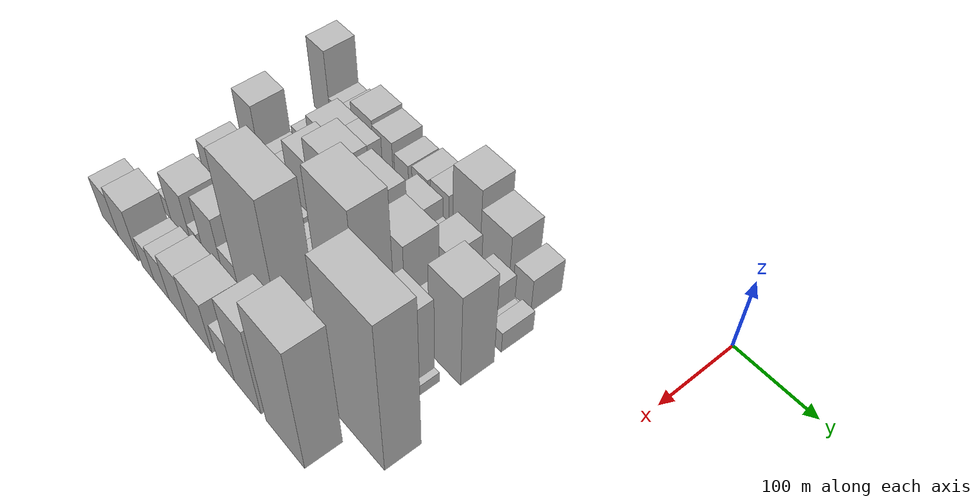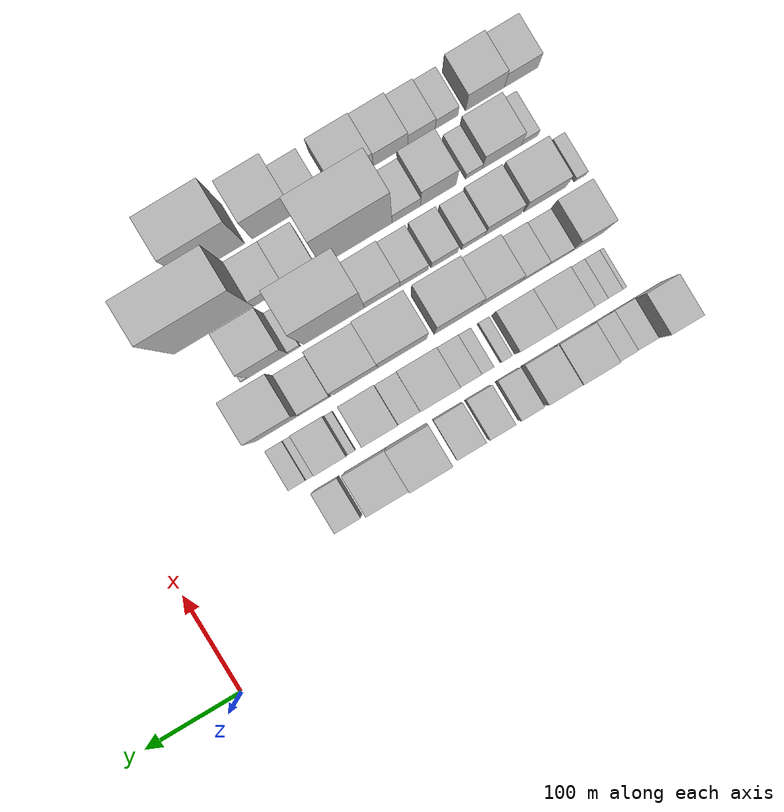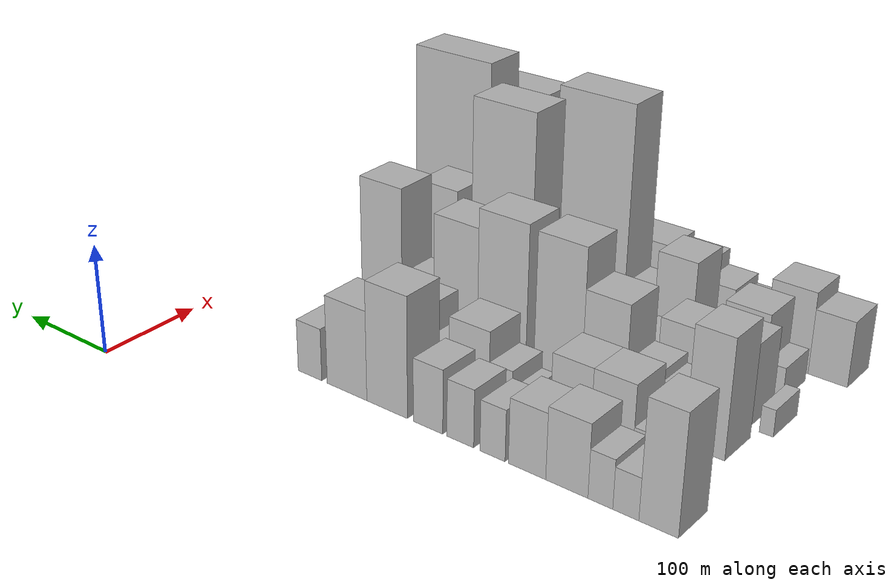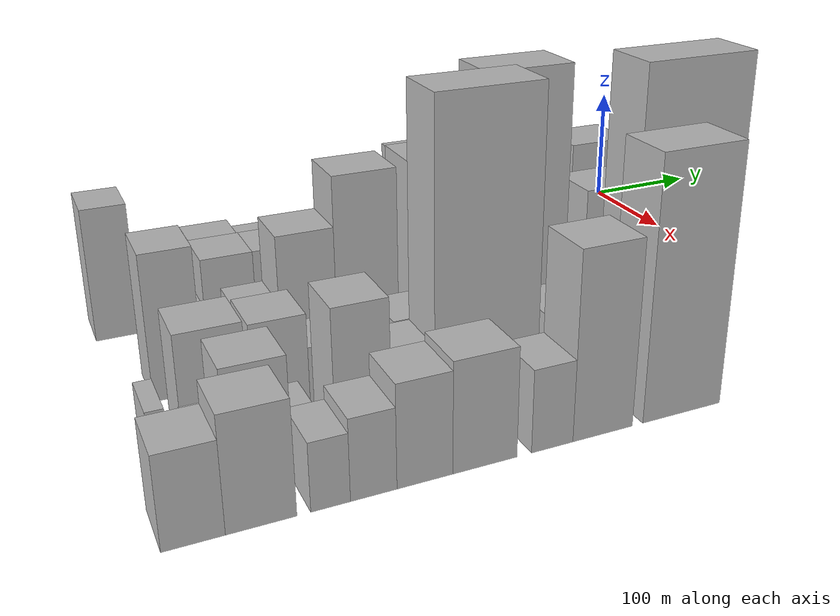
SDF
<sdf version="1.6">
 <world name="default">
  <model name="building_12">
   <static>1</static>
   <pose>100.0000 -491.4782 0 0.000000 0.000000 0.000000</pose>
   <link name="link">
    <pose>0 0 51.00 0 0 0</pose>
    <collision name="collision"><geometry><box><size>40.0000 31.9203 102.0000</size></box></geometry></collision>
    <visual name="visual">
     <cast_shadows>0</cast_shadows>
     <geometry><box><size>40.0000 31.9203 102.0000</size></box></geometry>
     <material>
      <script>
       <uri>model://HANNAS_wall/materials/scripts</uri>
       <uri>model://HANNAS_wall/materials/textures</uri>
       <name>vrc/HANNAS_wall</name>
      </script>
     </material>
    </visual>
   </link>
  </model>
  <model name="building_13">
   <static>1</static>
   <pose>100.0000 -464.7341 0 0.000000 0.000000 0.000000</pose>
   <link name="link">
    <pose>0 0 18.00 0 0 0</pose>
    <collision name="collision"><geometry><box><size>40.0000 21.5680 36.0000</size></box></geometry></collision>
    <visual name="visual">
     <cast_shadows>0</cast_shadows>
     <geometry><box><size>40.0000 21.5680 36.0000</size></box></geometry>
     <material>
      <script>
       <uri>model://HANNAS_wall/materials/scripts</uri>
       <uri>model://HANNAS_wall/materials/textures</uri>
       <name>vrc/HANNAS_wall</name>
      </script>
     </material>
    </visual>
   </link>
  </model>
  <model name="building_14">
   <static>1</static>
   <pose>100.0000 -443.4192 0 0.000000 0.000000 0.000000</pose>
   <link name="link">
    <pose>0 0 21.00 0 0 0</pose>
    <collision name="collision"><geometry><box><size>40.0000 21.0617 42.0000</size></box></geometry></collision>
    <visual name="visual">
     <cast_shadows>0</cast_shadows>
     <geometry><box><size>40.0000 21.0617 42.0000</size></box></geometry>
     <material>
      <script>
       <uri>model://HANNAS_wall/materials/scripts</uri>
       <uri>model://HANNAS_wall/materials/textures</uri>
       <name>vrc/HANNAS_wall</name>
      </script>
     </material>
    </visual>
   </link>
  </model>
  <model name="building_15">
   <static>1</static>
   <pose>100.0000 -414.4768 0 0.000000 0.000000 0.000000</pose>
   <link name="link">
    <pose>0 0 31.50 0 0 0</pose>
    <collision name="collision"><geometry><box><size>40.0000 36.8232 63.0000</size></box></geometry></collision>
    <visual name="visual">
     <cast_shadows>0</cast_shadows>
     <geometry><box><size>40.0000 36.8232 63.0000</size></box></geometry>
     <material>
      <script>
       <uri>model://HANNAS_wall/materials/scripts</uri>
       <uri>model://HANNAS_wall/materials/textures</uri>
       <name>vrc/HANNAS_wall</name>
      </script>
     </material>
    </visual>
   </link>
  </model>
  <model name="building_16">
   <static>1</static>
   <pose>100.0000 -379.1413 0 0.000000 0.000000 0.000000</pose>
   <link name="link">
    <pose>0 0 28.50 0 0 0</pose>
    <collision name="collision"><geometry><box><size>40.0000 33.8477 57.0000</size></box></geometry></collision>
    <visual name="visual">
     <cast_shadows>0</cast_shadows>
     <geometry><box><size>40.0000 33.8477 57.0000</size></box></geometry>
     <material>
      <script>
       <uri>model://HANNAS_wall/materials/scripts</uri>
       <uri>model://HANNAS_wall/materials/textures</uri>
       <name>vrc/HANNAS_wall</name>
      </script>
     </material>
    </visual>
   </link>
  </model>
  <model name="building_17">
   <static>1</static>
   <pose>100.0000 -347.4632 0 0.000000 0.000000 0.000000</pose>
   <link name="link">
    <pose>0 0 22.50 0 0 0</pose>
    <collision name="collision"><geometry><box><size>40.0000 23.5085 45.0000</size></box></geometry></collision>
    <visual name="visual">
     <cast_shadows>0</cast_shadows>
     <geometry><box><size>40.0000 23.5085 45.0000</size></box></geometry>
     <material>
      <script>
       <uri>model://HANNAS_wall/materials/scripts</uri>
       <uri>model://HANNAS_wall/materials/textures</uri>
       <name>vrc/HANNAS_wall</name>
      </script>
     </material>
    </visual>
   </link>
  </model>
  <model name="building_18">
   <static>1</static>
   <pose>100.0000 -316.7947 0 0.000000 0.000000 0.000000</pose>
   <link name="link">
    <pose>0 0 25.50 0 0 0</pose>
    <collision name="collision"><geometry><box><size>40.0000 25.8286 51.0000</size></box></geometry></collision>
    <visual name="visual">
     <cast_shadows>0</cast_shadows>
     <geometry><box><size>40.0000 25.8286 51.0000</size></box></geometry>
     <material>
      <script>
       <uri>model://HANNAS_wall/materials/scripts</uri>
       <uri>model://HANNAS_wall/materials/textures</uri>
       <name>vrc/HANNAS_wall</name>
      </script>
     </material>
    </visual>
   </link>
  </model>
  <model name="building_19">
   <static>1</static>
   <pose>100.0000 -285.2485 0 0.000000 0.000000 0.000000</pose>
   <link name="link">
    <pose>0 0 28.50 0 0 0</pose>
    <collision name="collision"><geometry><box><size>40.0000 29.2637 57.0000</size></box></geometry></collision>
    <visual name="visual">
     <cast_shadows>0</cast_shadows>
     <geometry><box><size>40.0000 29.2637 57.0000</size></box></geometry>
     <material>
      <script>
       <uri>model://HANNAS_wall/materials/scripts</uri>
       <uri>model://HANNAS_wall/materials/textures</uri>
       <name>vrc/HANNAS_wall</name>
      </script>
     </material>
    </visual>
   </link>
  </model>
  <model name="building_20">
   <static>1</static>
   <pose>100.0000 -243.5700 0 0.000000 0.000000 0.000000</pose>
   <link name="link">
    <pose>0 0 54.00 0 0 0</pose>
    <collision name="collision"><geometry><box><size>40.0000 42.0933 108.0000</size></box></geometry></collision>
    <visual name="visual">
     <cast_shadows>0</cast_shadows>
     <geometry><box><size>40.0000 42.0933 108.0000</size></box></geometry>
     <material>
      <script>
       <uri>model://HANNAS_wall/materials/scripts</uri>
       <uri>model://HANNAS_wall/materials/textures</uri>
       <name>vrc/HANNAS_wall</name>
      </script>
     </material>
    </visual>
   </link>
  </model>
  <model name="building_21">
   <static>1</static>
   <pose>100.0000 -201.1396 0 0.000000 0.000000 0.000000</pose>
   <link name="link">
    <pose>0 0 40.50 0 0 0</pose>
    <collision name="collision"><geometry><box><size>40.0000 42.7674 81.0000</size></box></geometry></collision>
    <visual name="visual">
     <cast_shadows>0</cast_shadows>
     <geometry><box><size>40.0000 42.7674 81.0000</size></box></geometry>
     <material>
      <script>
       <uri>model://HANNAS_wall/materials/scripts</uri>
       <uri>model://HANNAS_wall/materials/textures</uri>
       <name>vrc/HANNAS_wall</name>
      </script>
     </material>
    </visual>
   </link>
  </model>
  <model name="building_22">
   <static>1</static>
   <pose>100.0000 -160.5968 0 0.000000 0.000000 0.000000</pose>
   <link name="link">
    <pose>0 0 24.00 0 0 0</pose>
    <collision name="collision"><geometry><box><size>40.0000 26.3182 48.0000</size></box></geometry></collision>
    <visual name="visual">
     <cast_shadows>0</cast_shadows>
     <geometry><box><size>40.0000 26.3182 48.0000</size></box></geometry>
     <material>
      <script>
       <uri>model://HANNAS_wall/materials/scripts</uri>
       <uri>model://HANNAS_wall/materials/textures</uri>
       <name>vrc/HANNAS_wall</name>
      </script>
     </material>
    </visual>
   </link>
  </model>
  <model name="building_71">
   <static>1</static>
   <pose>152.0000 -474.4227 0 0.000000 0.000000 0.000000</pose>
   <link name="link">
    <pose>0 0 7.50 0 0 0</pose>
    <collision name="collision"><geometry><box><size>40.0000 6.0027 15.0000</size></box></geometry></collision>
    <visual name="visual">
     <cast_shadows>0</cast_shadows>
     <geometry><box><size>40.0000 6.0027 15.0000</size></box></geometry>
     <material>
      <script>
       <uri>model://HANNAS_wall/materials/scripts</uri>
       <uri>model://HANNAS_wall/materials/textures</uri>
       <name>vrc/HANNAS_wall</name>
      </script>
     </material>
    </visual>
   </link>
  </model>
  <model name="building_72">
   <static>1</static>
   <pose>152.0000 -463.4967 0 0.000000 0.000000 0.000000</pose>
   <link name="link">
    <pose>0 0 15.00 0 0 0</pose>
    <collision name="collision"><geometry><box><size>40.0000 15.8494 30.0000</size></box></geometry></collision>
    <visual name="visual">
     <cast_shadows>0</cast_shadows>
     <geometry><box><size>40.0000 15.8494 30.0000</size></box></geometry>
     <material>
      <script>
       <uri>model://HANNAS_wall/materials/scripts</uri>
       <uri>model://HANNAS_wall/materials/textures</uri>
       <name>vrc/HANNAS_wall</name>
      </script>
     </material>
    </visual>
   </link>
  </model>
  <model name="building_73">
   <static>1</static>
   <pose>152.0000 -446.4558 0 0.000000 0.000000 0.000000</pose>
   <link name="link">
    <pose>0 0 18.00 0 0 0</pose>
    <collision name="collision"><geometry><box><size>40.0000 18.2323 36.0000</size></box></geometry></collision>
    <visual name="visual">
     <cast_shadows>0</cast_shadows>
     <geometry><box><size>40.0000 18.2323 36.0000</size></box></geometry>
     <material>
      <script>
       <uri>model://HANNAS_wall/materials/scripts</uri>
       <uri>model://HANNAS_wall/materials/textures</uri>
       <name>vrc/HANNAS_wall</name>
      </script>
     </material>
    </visual>
   </link>
  </model>
  <model name="building_74">
   <static>1</static>
   <pose>152.0000 -418.7842 0 0.000000 0.000000 0.000000</pose>
   <link name="link">
    <pose>0 0 36.00 0 0 0</pose>
    <collision name="collision"><geometry><box><size>40.0000 37.1108 72.0000</size></box></geometry></collision>
    <visual name="visual">
     <cast_shadows>0</cast_shadows>
     <geometry><box><size>40.0000 37.1108 72.0000</size></box></geometry>
     <material>
      <script>
       <uri>model://HANNAS_wall/materials/scripts</uri>
       <uri>model://HANNAS_wall/materials/textures</uri>
       <name>vrc/HANNAS_wall</name>
      </script>
     </material>
    </visual>
   </link>
  </model>
  <model name="building_75">
   <static>1</static>
   <pose>152.0000 -381.7975 0 0.000000 0.000000 0.000000</pose>
   <link name="link">
    <pose>0 0 36.00 0 0 0</pose>
    <collision name="collision"><geometry><box><size>40.0000 36.8627 72.0000</size></box></geometry></collision>
    <visual name="visual">
     <cast_shadows>0</cast_shadows>
     <geometry><box><size>40.0000 36.8627 72.0000</size></box></geometry>
     <material>
      <script>
       <uri>model://HANNAS_wall/materials/scripts</uri>
       <uri>model://HANNAS_wall/materials/textures</uri>
       <name>vrc/HANNAS_wall</name>
      </script>
     </material>
    </visual>
   </link>
  </model>
  <model name="building_76">
   <static>1</static>
   <pose>152.0000 -353.9044 0 0.000000 0.000000 0.000000</pose>
   <link name="link">
    <pose>0 0 12.00 0 0 0</pose>
    <collision name="collision"><geometry><box><size>40.0000 10.9236 24.0000</size></box></geometry></collision>
    <visual name="visual">
     <cast_shadows>0</cast_shadows>
     <geometry><box><size>40.0000 10.9236 24.0000</size></box></geometry>
     <material>
      <script>
       <uri>model://HANNAS_wall/materials/scripts</uri>
       <uri>model://HANNAS_wall/materials/textures</uri>
       <name>vrc/HANNAS_wall</name>
      </script>
     </material>
    </visual>
   </link>
  </model>
  <model name="building_77">
   <static>1</static>
   <pose>152.0000 -333.8802 0 0.000000 0.000000 0.000000</pose>
   <link name="link">
    <pose>0 0 13.50 0 0 0</pose>
    <collision name="collision"><geometry><box><size>40.0000 13.1247 27.0000</size></box></geometry></collision>
    <visual name="visual">
     <cast_shadows>0</cast_shadows>
     <geometry><box><size>40.0000 13.1247 27.0000</size></box></geometry>
     <material>
      <script>
       <uri>model://HANNAS_wall/materials/scripts</uri>
       <uri>model://HANNAS_wall/materials/textures</uri>
       <name>vrc/HANNAS_wall</name>
      </script>
     </material>
    </visual>
   </link>
  </model>
  <model name="building_78">
   <static>1</static>
   <pose>152.0000 -316.1333 0 0.000000 0.000000 0.000000</pose>
   <link name="link">
    <pose>0 0 21.00 0 0 0</pose>
    <collision name="collision"><geometry><box><size>40.0000 22.3693 42.0000</size></box></geometry></collision>
    <visual name="visual">
     <cast_shadows>0</cast_shadows>
     <geometry><box><size>40.0000 22.3693 42.0000</size></box></geometry>
     <material>
      <script>
       <uri>model://HANNAS_wall/materials/scripts</uri>
       <uri>model://HANNAS_wall/materials/textures</uri>
       <name>vrc/HANNAS_wall</name>
      </script>
     </material>
    </visual>
   </link>
  </model>
  <model name="building_79">
   <static>1</static>
   <pose>152.0000 -284.8785 0 0.000000 0.000000 0.000000</pose>
   <link name="link">
    <pose>0 0 34.50 0 0 0</pose>
    <collision name="collision"><geometry><box><size>40.0000 40.1402 69.0000</size></box></geometry></collision>
    <visual name="visual">
     <cast_shadows>0</cast_shadows>
     <geometry><box><size>40.0000 40.1402 69.0000</size></box></geometry>
     <material>
      <script>
       <uri>model://HANNAS_wall/materials/scripts</uri>
       <uri>model://HANNAS_wall/materials/textures</uri>
       <name>vrc/HANNAS_wall</name>
      </script>
     </material>
    </visual>
   </link>
  </model>
  <model name="building_80">
   <static>1</static>
   <pose>152.0000 -253.7390 0 0.000000 0.000000 0.000000</pose>
   <link name="link">
    <pose>0 0 21.00 0 0 0</pose>
    <collision name="collision"><geometry><box><size>40.0000 22.1389 42.0000</size></box></geometry></collision>
    <visual name="visual">
     <cast_shadows>0</cast_shadows>
     <geometry><box><size>40.0000 22.1389 42.0000</size></box></geometry>
     <material>
      <script>
       <uri>model://HANNAS_wall/materials/scripts</uri>
       <uri>model://HANNAS_wall/materials/textures</uri>
       <name>vrc/HANNAS_wall</name>
      </script>
     </material>
    </visual>
   </link>
  </model>
  <model name="building_81">
   <static>1</static>
   <pose>152.0000 -224.5922 0 0.000000 0.000000 0.000000</pose>
   <link name="link">
    <pose>0 0 34.50 0 0 0</pose>
    <collision name="collision"><geometry><box><size>40.0000 36.1547 69.0000</size></box></geometry></collision>
    <visual name="visual">
     <cast_shadows>0</cast_shadows>
     <geometry><box><size>40.0000 36.1547 69.0000</size></box></geometry>
     <material>
      <script>
       <uri>model://HANNAS_wall/materials/scripts</uri>
       <uri>model://HANNAS_wall/materials/textures</uri>
       <name>vrc/HANNAS_wall</name>
      </script>
     </material>
    </visual>
   </link>
  </model>
  <model name="building_82">
   <static>1</static>
   <pose>152.0000 -194.5961 0 0.000000 0.000000 0.000000</pose>
   <link name="link">
    <pose>0 0 9.00 0 0 0</pose>
    <collision name="collision"><geometry><box><size>40.0000 7.8374 18.0000</size></box></geometry></collision>
    <visual name="visual">
     <cast_shadows>0</cast_shadows>
     <geometry><box><size>40.0000 7.8374 18.0000</size></box></geometry>
     <material>
      <script>
       <uri>model://HANNAS_wall/materials/scripts</uri>
       <uri>model://HANNAS_wall/materials/textures</uri>
       <name>vrc/HANNAS_wall</name>
      </script>
     </material>
    </visual>
   </link>
  </model>
  <model name="building_83">
   <static>1</static>
   <pose>152.0000 -174.4472 0 0.000000 0.000000 0.000000</pose>
   <link name="link">
    <pose>0 0 28.50 0 0 0</pose>
    <collision name="collision"><geometry><box><size>40.0000 32.4604 57.0000</size></box></geometry></collision>
    <visual name="visual">
     <cast_shadows>0</cast_shadows>
     <geometry><box><size>40.0000 32.4604 57.0000</size></box></geometry>
     <material>
      <script>
       <uri>model://HANNAS_wall/materials/scripts</uri>
       <uri>model://HANNAS_wall/materials/textures</uri>
       <name>vrc/HANNAS_wall</name>
      </script>
     </material>
    </visual>
   </link>
  </model>
  <model name="building_84">
   <static>1</static>
   <pose>152.0000 -153.2148 0 0.000000 0.000000 0.000000</pose>
   <link name="link">
    <pose>0 0 10.50 0 0 0</pose>
    <collision name="collision"><geometry><box><size>40.0000 10.0044 21.0000</size></box></geometry></collision>
    <visual name="visual">
     <cast_shadows>0</cast_shadows>
     <geometry><box><size>40.0000 10.0044 21.0000</size></box></geometry>
     <material>
      <script>
       <uri>model://HANNAS_wall/materials/scripts</uri>
       <uri>model://HANNAS_wall/materials/textures</uri>
       <name>vrc/HANNAS_wall</name>
      </script>
     </material>
    </visual>
   </link>
  </model>
  <model name="building_85">
   <static>1</static>
   <pose>152.0000 -139.5191 0 0.000000 0.000000 0.000000</pose>
   <link name="link">
    <pose>0 0 15.00 0 0 0</pose>
    <collision name="collision"><geometry><box><size>40.0000 17.3870 30.0000</size></box></geometry></collision>
    <visual name="visual">
     <cast_shadows>0</cast_shadows>
     <geometry><box><size>40.0000 17.3870 30.0000</size></box></geometry>
     <material>
      <script>
       <uri>model://HANNAS_wall/materials/scripts</uri>
       <uri>model://HANNAS_wall/materials/textures</uri>
       <name>vrc/HANNAS_wall</name>
      </script>
     </material>
    </visual>
   </link>
  </model>
  <model name="building_121">
   <static>1</static>
   <pose>204.0000 -469.0116 0 0.000000 0.000000 0.000000</pose>
   <link name="link">
    <pose>0 0 52.50 0 0 0</pose>
    <collision name="collision"><geometry><box><size>40.0000 34.1950 105.0000</size></box></geometry></collision>
    <visual name="visual">
     <cast_shadows>0</cast_shadows>
     <geometry><box><size>40.0000 34.1950 105.0000</size></box></geometry>
     <material>
      <script>
       <uri>model://HANNAS_wall/materials/scripts</uri>
       <uri>model://HANNAS_wall/materials/textures</uri>
       <name>vrc/HANNAS_wall</name>
      </script>
     </material>
    </visual>
   </link>
  </model>
  <model name="building_122">
   <static>1</static>
   <pose>204.0000 -439.5839 0 0.000000 0.000000 0.000000</pose>
   <link name="link">
    <pose>0 0 22.50 0 0 0</pose>
    <collision name="collision"><geometry><box><size>40.0000 24.6604 45.0000</size></box></geometry></collision>
    <visual name="visual">
     <cast_shadows>0</cast_shadows>
     <geometry><box><size>40.0000 24.6604 45.0000</size></box></geometry>
     <material>
      <script>
       <uri>model://HANNAS_wall/materials/scripts</uri>
       <uri>model://HANNAS_wall/materials/textures</uri>
       <name>vrc/HANNAS_wall</name>
      </script>
     </material>
    </visual>
   </link>
  </model>
  <model name="building_123">
   <static>1</static>
   <pose>204.0000 -412.4504 0 0.000000 0.000000 0.000000</pose>
   <link name="link">
    <pose>0 0 27.00 0 0 0</pose>
    <collision name="collision"><geometry><box><size>40.0000 29.6065 54.0000</size></box></geometry></collision>
    <visual name="visual">
     <cast_shadows>0</cast_shadows>
     <geometry><box><size>40.0000 29.6065 54.0000</size></box></geometry>
     <material>
      <script>
       <uri>model://HANNAS_wall/materials/scripts</uri>
       <uri>model://HANNAS_wall/materials/textures</uri>
       <name>vrc/HANNAS_wall</name>
      </script>
     </material>
    </visual>
   </link>
  </model>
  <model name="building_124">
   <static>1</static>
   <pose>204.0000 -377.4263 0 0.000000 0.000000 0.000000</pose>
   <link name="link">
    <pose>0 0 51.00 0 0 0</pose>
    <collision name="collision"><geometry><box><size>40.0000 40.4418 102.0000</size></box></geometry></collision>
    <visual name="visual">
     <cast_shadows>0</cast_shadows>
     <geometry><box><size>40.0000 40.4418 102.0000</size></box></geometry>
     <material>
      <script>
       <uri>model://HANNAS_wall/materials/scripts</uri>
       <uri>model://HANNAS_wall/materials/textures</uri>
       <name>vrc/HANNAS_wall</name>
      </script>
     </material>
    </visual>
   </link>
  </model>
  <model name="building_125">
   <static>1</static>
   <pose>204.0000 -334.1297 0 0.000000 0.000000 0.000000</pose>
   <link name="link">
    <pose>0 0 69.00 0 0 0</pose>
    <collision name="collision"><geometry><box><size>40.0000 46.1516 138.0000</size></box></geometry></collision>
    <visual name="visual">
     <cast_shadows>0</cast_shadows>
     <geometry><box><size>40.0000 46.1516 138.0000</size></box></geometry>
     <material>
      <script>
       <uri>model://HANNAS_wall/materials/scripts</uri>
       <uri>model://HANNAS_wall/materials/textures</uri>
       <name>vrc/HANNAS_wall</name>
      </script>
     </material>
    </visual>
   </link>
  </model>
  <model name="building_126">
   <static>1</static>
   <pose>204.0000 -278.3662 0 0.000000 0.000000 0.000000</pose>
   <link name="link">
    <pose>0 0 70.50 0 0 0</pose>
    <collision name="collision"><geometry><box><size>40.0000 49.3752 141.0000</size></box></geometry></collision>
    <visual name="visual">
     <cast_shadows>0</cast_shadows>
     <geometry><box><size>40.0000 49.3752 141.0000</size></box></geometry>
     <material>
      <script>
       <uri>model://HANNAS_wall/materials/scripts</uri>
       <uri>model://HANNAS_wall/materials/textures</uri>
       <name>vrc/HANNAS_wall</name>
      </script>
     </material>
    </visual>
   </link>
  </model>
  <model name="building_127">
   <static>1</static>
   <pose>204.0000 -230.5601 0 0.000000 0.000000 0.000000</pose>
   <link name="link">
    <pose>0 0 61.50 0 0 0</pose>
    <collision name="collision"><geometry><box><size>40.0000 46.2371 123.0000</size></box></geometry></collision>
    <visual name="visual">
     <cast_shadows>0</cast_shadows>
     <geometry><box><size>40.0000 46.2371 123.0000</size></box></geometry>
     <material>
      <script>
       <uri>model://HANNAS_wall/materials/scripts</uri>
       <uri>model://HANNAS_wall/materials/textures</uri>
       <name>vrc/HANNAS_wall</name>
      </script>
     </material>
    </visual>
   </link>
  </model>
  <model name="building_128">
   <static>1</static>
   <pose>204.0000 -188.5163 0 0.000000 0.000000 0.000000</pose>
   <link name="link">
    <pose>0 0 28.50 0 0 0</pose>
    <collision name="collision"><geometry><box><size>40.0000 31.8505 57.0000</size></box></geometry></collision>
    <visual name="visual">
     <cast_shadows>0</cast_shadows>
     <geometry><box><size>40.0000 31.8505 57.0000</size></box></geometry>
     <material>
      <script>
       <uri>model://HANNAS_wall/materials/scripts</uri>
       <uri>model://HANNAS_wall/materials/textures</uri>
       <name>vrc/HANNAS_wall</name>
      </script>
     </material>
    </visual>
   </link>
  </model>
  <model name="building_129">
   <static>1</static>
   <pose>204.0000 -149.8427 0 0.000000 0.000000 0.000000</pose>
   <link name="link">
    <pose>0 0 67.50 0 0 0</pose>
    <collision name="collision"><geometry><box><size>40.0000 45.4966 135.0000</size></box></geometry></collision>
    <visual name="visual">
     <cast_shadows>0</cast_shadows>
     <geometry><box><size>40.0000 45.4966 135.0000</size></box></geometry>
     <material>
      <script>
       <uri>model://HANNAS_wall/materials/scripts</uri>
       <uri>model://HANNAS_wall/materials/textures</uri>
       <name>vrc/HANNAS_wall</name>
      </script>
     </material>
    </visual>
   </link>
  </model>
  <model name="building_169">
   <static>1</static>
   <pose>256.0000 -493.3937 0 0.000000 0.000000 0.000000</pose>
   <link name="link">
    <pose>0 0 12.00 0 0 0</pose>
    <collision name="collision"><geometry><box><size>40.0000 11.8704 24.0000</size></box></geometry></collision>
    <visual name="visual">
     <cast_shadows>0</cast_shadows>
     <geometry><box><size>40.0000 11.8704 24.0000</size></box></geometry>
     <material>
      <script>
       <uri>model://HANNAS_wall/materials/scripts</uri>
       <uri>model://HANNAS_wall/materials/textures</uri>
       <name>vrc/HANNAS_wall</name>
      </script>
     </material>
    </visual>
   </link>
  </model>
  <model name="building_170">
   <static>1</static>
   <pose>256.0000 -456.9606 0 0.000000 0.000000 0.000000</pose>
   <link name="link">
    <pose>0 0 36.00 0 0 0</pose>
    <collision name="collision"><geometry><box><size>40.0000 42.9958 72.0000</size></box></geometry></collision>
    <visual name="visual">
     <cast_shadows>0</cast_shadows>
     <geometry><box><size>40.0000 42.9958 72.0000</size></box></geometry>
     <material>
      <script>
       <uri>model://HANNAS_wall/materials/scripts</uri>
       <uri>model://HANNAS_wall/materials/textures</uri>
       <name>vrc/HANNAS_wall</name>
      </script>
     </material>
    </visual>
   </link>
  </model>
  <model name="building_171">
   <static>1</static>
   <pose>256.0000 -413.6905 0 0.000000 0.000000 0.000000</pose>
   <link name="link">
    <pose>0 0 34.50 0 0 0</pose>
    <collision name="collision"><geometry><box><size>40.0000 37.5443 69.0000</size></box></geometry></collision>
    <visual name="visual">
     <cast_shadows>0</cast_shadows>
     <geometry><box><size>40.0000 37.5443 69.0000</size></box></geometry>
     <material>
      <script>
       <uri>model://HANNAS_wall/materials/scripts</uri>
       <uri>model://HANNAS_wall/materials/textures</uri>
       <name>vrc/HANNAS_wall</name>
      </script>
     </material>
    </visual>
   </link>
  </model>
  <model name="building_172">
   <static>1</static>
   <pose>256.0000 -382.7343 0 0.000000 0.000000 0.000000</pose>
   <link name="link">
    <pose>0 0 22.50 0 0 0</pose>
    <collision name="collision"><geometry><box><size>40.0000 24.3682 45.0000</size></box></geometry></collision>
    <visual name="visual">
     <cast_shadows>0</cast_shadows>
     <geometry><box><size>40.0000 24.3682 45.0000</size></box></geometry>
     <material>
      <script>
       <uri>model://HANNAS_wall/materials/scripts</uri>
       <uri>model://HANNAS_wall/materials/textures</uri>
       <name>vrc/HANNAS_wall</name>
      </script>
     </material>
    </visual>
   </link>
  </model>
  <model name="building_173">
   <static>1</static>
   <pose>256.0000 -352.8234 0 0.000000 0.000000 0.000000</pose>
   <link name="link">
    <pose>0 0 27.00 0 0 0</pose>
    <collision name="collision"><geometry><box><size>40.0000 27.4536 54.0000</size></box></geometry></collision>
    <visual name="visual">
     <cast_shadows>0</cast_shadows>
     <geometry><box><size>40.0000 27.4536 54.0000</size></box></geometry>
     <material>
      <script>
       <uri>model://HANNAS_wall/materials/scripts</uri>
       <uri>model://HANNAS_wall/materials/textures</uri>
       <name>vrc/HANNAS_wall</name>
      </script>
     </material>
    </visual>
   </link>
  </model>
  <model name="building_174">
   <static>1</static>
   <pose>256.0000 -321.6377 0 0.000000 0.000000 0.000000</pose>
   <link name="link">
    <pose>0 0 25.50 0 0 0</pose>
    <collision name="collision"><geometry><box><size>40.0000 28.9178 51.0000</size></box></geometry></collision>
    <visual name="visual">
     <cast_shadows>0</cast_shadows>
     <geometry><box><size>40.0000 28.9178 51.0000</size></box></geometry>
     <material>
      <script>
       <uri>model://HANNAS_wall/materials/scripts</uri>
       <uri>model://HANNAS_wall/materials/textures</uri>
       <name>vrc/HANNAS_wall</name>
      </script>
     </material>
    </visual>
   </link>
  </model>
  <model name="building_175">
   <static>1</static>
   <pose>256.0000 -288.8012 0 0.000000 0.000000 0.000000</pose>
   <link name="link">
    <pose>0 0 33.00 0 0 0</pose>
    <collision name="collision"><geometry><box><size>40.0000 36.7551 66.0000</size></box></geometry></collision>
    <visual name="visual">
     <cast_shadows>0</cast_shadows>
     <geometry><box><size>40.0000 36.7551 66.0000</size></box></geometry>
     <material>
      <script>
       <uri>model://HANNAS_wall/materials/scripts</uri>
       <uri>model://HANNAS_wall/materials/textures</uri>
       <name>vrc/HANNAS_wall</name>
      </script>
     </material>
    </visual>
   </link>
  </model>
  <model name="building_176">
   <static>1</static>
   <pose>256.0000 -238.7502 0 0.000000 0.000000 0.000000</pose>
   <link name="link">
    <pose>0 0 105.00 0 0 0</pose>
    <collision name="collision"><geometry><box><size>40.0000 63.3469 210.0000</size></box></geometry></collision>
    <visual name="visual">
     <cast_shadows>0</cast_shadows>
     <geometry><box><size>40.0000 63.3469 210.0000</size></box></geometry>
     <material>
      <script>
       <uri>model://HANNAS_wall/materials/scripts</uri>
       <uri>model://HANNAS_wall/materials/textures</uri>
       <name>vrc/HANNAS_wall</name>
      </script>
     </material>
    </visual>
   </link>
  </model>
  <model name="building_177">
   <static>1</static>
   <pose>256.0000 -197.8873 0 0.000000 0.000000 0.000000</pose>
   <link name="link">
    <pose>0 0 13.50 0 0 0</pose>
    <collision name="collision"><geometry><box><size>40.0000 12.3789 27.0000</size></box></geometry></collision>
    <visual name="visual">
     <cast_shadows>0</cast_shadows>
     <geometry><box><size>40.0000 12.3789 27.0000</size></box></geometry>
     <material>
      <script>
       <uri>model://HANNAS_wall/materials/scripts</uri>
       <uri>model://HANNAS_wall/materials/textures</uri>
       <name>vrc/HANNAS_wall</name>
      </script>
     </material>
    </visual>
   </link>
  </model>
  <model name="building_178">
   <static>1</static>
   <pose>256.0000 -170.6733 0 0.000000 0.000000 0.000000</pose>
   <link name="link">
    <pose>0 0 60.00 0 0 0</pose>
    <collision name="collision"><geometry><box><size>40.0000 42.0491 120.0000</size></box></geometry></collision>
    <visual name="visual">
     <cast_shadows>0</cast_shadows>
     <geometry><box><size>40.0000 42.0491 120.0000</size></box></geometry>
     <material>
      <script>
       <uri>model://HANNAS_wall/materials/scripts</uri>
       <uri>model://HANNAS_wall/materials/textures</uri>
       <name>vrc/HANNAS_wall</name>
      </script>
     </material>
    </visual>
   </link>
  </model>
  <model name="building_179">
   <static>1</static>
   <pose>256.0000 -146.1767 0 0.000000 0.000000 0.000000</pose>
   <link name="link">
    <pose>0 0 7.50 0 0 0</pose>
    <collision name="collision"><geometry><box><size>40.0000 6.9440 15.0000</size></box></geometry></collision>
    <visual name="visual">
     <cast_shadows>0</cast_shadows>
     <geometry><box><size>40.0000 6.9440 15.0000</size></box></geometry>
     <material>
      <script>
       <uri>model://HANNAS_wall/materials/scripts</uri>
       <uri>model://HANNAS_wall/materials/textures</uri>
       <name>vrc/HANNAS_wall</name>
      </script>
     </material>
    </visual>
   </link>
  </model>
  <model name="building_224">
   <static>1</static>
   <pose>308.0000 -472.1638 0 0.000000 0.000000 0.000000</pose>
   <link name="link">
    <pose>0 0 15.00 0 0 0</pose>
    <collision name="collision"><geometry><box><size>40.0000 17.2253 30.0000</size></box></geometry></collision>
    <visual name="visual">
     <cast_shadows>0</cast_shadows>
     <geometry><box><size>40.0000 17.2253 30.0000</size></box></geometry>
     <material>
      <script>
       <uri>model://HANNAS_wall/materials/scripts</uri>
       <uri>model://HANNAS_wall/materials/textures</uri>
       <name>vrc/HANNAS_wall</name>
      </script>
     </material>
    </visual>
   </link>
  </model>
  <model name="building_225">
   <static>1</static>
   <pose>308.0000 -443.5248 0 0.000000 0.000000 0.000000</pose>
   <link name="link">
    <pose>0 0 36.00 0 0 0</pose>
    <collision name="collision"><geometry><box><size>40.0000 40.0527 72.0000</size></box></geometry></collision>
    <visual name="visual">
     <cast_shadows>0</cast_shadows>
     <geometry><box><size>40.0000 40.0527 72.0000</size></box></geometry>
     <material>
      <script>
       <uri>model://HANNAS_wall/materials/scripts</uri>
       <uri>model://HANNAS_wall/materials/textures</uri>
       <name>vrc/HANNAS_wall</name>
      </script>
     </material>
    </visual>
   </link>
  </model>
  <model name="building_226">
   <static>1</static>
   <pose>308.0000 -414.7837 0 0.000000 0.000000 0.000000</pose>
   <link name="link">
    <pose>0 0 15.00 0 0 0</pose>
    <collision name="collision"><geometry><box><size>40.0000 17.4295 30.0000</size></box></geometry></collision>
    <visual name="visual">
     <cast_shadows>0</cast_shadows>
     <geometry><box><size>40.0000 17.4295 30.0000</size></box></geometry>
     <material>
      <script>
       <uri>model://HANNAS_wall/materials/scripts</uri>
       <uri>model://HANNAS_wall/materials/textures</uri>
       <name>vrc/HANNAS_wall</name>
      </script>
     </material>
    </visual>
   </link>
  </model>
  <model name="building_227">
   <static>1</static>
   <pose>308.0000 -377.7340 0 0.000000 0.000000 0.000000</pose>
   <link name="link">
    <pose>0 0 48.00 0 0 0</pose>
    <collision name="collision"><geometry><box><size>40.0000 36.6698 96.0000</size></box></geometry></collision>
    <visual name="visual">
     <cast_shadows>0</cast_shadows>
     <geometry><box><size>40.0000 36.6698 96.0000</size></box></geometry>
     <material>
      <script>
       <uri>model://HANNAS_wall/materials/scripts</uri>
       <uri>model://HANNAS_wall/materials/textures</uri>
       <name>vrc/HANNAS_wall</name>
      </script>
     </material>
    </visual>
   </link>
  </model>
  <model name="building_228">
   <static>1</static>
   <pose>308.0000 -344.6903 0 0.000000 0.000000 0.000000</pose>
   <link name="link">
    <pose>0 0 28.50 0 0 0</pose>
    <collision name="collision"><geometry><box><size>40.0000 29.4177 57.0000</size></box></geometry></collision>
    <visual name="visual">
     <cast_shadows>0</cast_shadows>
     <geometry><box><size>40.0000 29.4177 57.0000</size></box></geometry>
     <material>
      <script>
       <uri>model://HANNAS_wall/materials/scripts</uri>
       <uri>model://HANNAS_wall/materials/textures</uri>
       <name>vrc/HANNAS_wall</name>
      </script>
     </material>
    </visual>
   </link>
  </model>
  <model name="building_229">
   <static>1</static>
   <pose>308.0000 -293.3080 0 0.000000 0.000000 0.000000</pose>
   <link name="link">
    <pose>0 0 108.00 0 0 0</pose>
    <collision name="collision"><geometry><box><size>40.0000 73.3467 216.0000</size></box></geometry></collision>
    <visual name="visual">
     <cast_shadows>0</cast_shadows>
     <geometry><box><size>40.0000 73.3467 216.0000</size></box></geometry>
     <material>
      <script>
       <uri>model://HANNAS_wall/materials/scripts</uri>
       <uri>model://HANNAS_wall/materials/textures</uri>
       <name>vrc/HANNAS_wall</name>
      </script>
     </material>
    </visual>
   </link>
  </model>
  <model name="building_230">
   <static>1</static>
   <pose>308.0000 -236.4261 0 0.000000 0.000000 0.000000</pose>
   <link name="link">
    <pose>0 0 31.50 0 0 0</pose>
    <collision name="collision"><geometry><box><size>40.0000 32.4171 63.0000</size></box></geometry></collision>
    <visual name="visual">
     <cast_shadows>0</cast_shadows>
     <geometry><box><size>40.0000 32.4171 63.0000</size></box></geometry>
     <material>
      <script>
       <uri>model://HANNAS_wall/materials/scripts</uri>
       <uri>model://HANNAS_wall/materials/textures</uri>
       <name>vrc/HANNAS_wall</name>
      </script>
     </material>
    </visual>
   </link>
  </model>
  <model name="building_231">
   <static>1</static>
   <pose>308.0000 -203.3037 0 0.000000 0.000000 0.000000</pose>
   <link name="link">
    <pose>0 0 31.50 0 0 0</pose>
    <collision name="collision"><geometry><box><size>40.0000 33.8278 63.0000</size></box></geometry></collision>
    <visual name="visual">
     <cast_shadows>0</cast_shadows>
     <geometry><box><size>40.0000 33.8278 63.0000</size></box></geometry>
     <material>
      <script>
       <uri>model://HANNAS_wall/materials/scripts</uri>
       <uri>model://HANNAS_wall/materials/textures</uri>
       <name>vrc/HANNAS_wall</name>
      </script>
     </material>
    </visual>
   </link>
  </model>
  <model name="building_232">
   <static>1</static>
   <pose>308.0000 -145.1273 0 0.000000 0.000000 0.000000</pose>
   <link name="link">
    <pose>0 0 109.50 0 0 0</pose>
    <collision name="collision"><geometry><box><size>40.0000 82.5251 219.0000</size></box></geometry></collision>
    <visual name="visual">
     <cast_shadows>0</cast_shadows>
     <geometry><box><size>40.0000 82.5251 219.0000</size></box></geometry>
     <material>
      <script>
       <uri>model://HANNAS_wall/materials/scripts</uri>
       <uri>model://HANNAS_wall/materials/textures</uri>
       <name>vrc/HANNAS_wall</name>
      </script>
     </material>
    </visual>
   </link>
  </model>
  <model name="building_274">
   <static>1</static>
   <pose>360.0000 -494.8286 0 0.000000 0.000000 0.000000</pose>
   <link name="link">
    <pose>0 0 30.00 0 0 0</pose>
    <collision name="collision"><geometry><box><size>40.0000 34.6860 60.0000</size></box></geometry></collision>
    <visual name="visual">
     <cast_shadows>0</cast_shadows>
     <geometry><box><size>40.0000 34.6860 60.0000</size></box></geometry>
     <material>
      <script>
       <uri>model://HANNAS_wall/materials/scripts</uri>
       <uri>model://HANNAS_wall/materials/textures</uri>
       <name>vrc/HANNAS_wall</name>
      </script>
     </material>
    </visual>
   </link>
  </model>
  <model name="building_275">
   <static>1</static>
   <pose>360.0000 -457.4261 0 0.000000 0.000000 0.000000</pose>
   <link name="link">
    <pose>0 0 37.50 0 0 0</pose>
    <collision name="collision"><geometry><box><size>40.0000 40.1191 75.0000</size></box></geometry></collision>
    <visual name="visual">
     <cast_shadows>0</cast_shadows>
     <geometry><box><size>40.0000 40.1191 75.0000</size></box></geometry>
     <material>
      <script>
       <uri>model://HANNAS_wall/materials/scripts</uri>
       <uri>model://HANNAS_wall/materials/textures</uri>
       <name>vrc/HANNAS_wall</name>
      </script>
     </material>
    </visual>
   </link>
  </model>
  <model name="building_276">
   <static>1</static>
   <pose>360.0000 -417.6243 0 0.000000 0.000000 0.000000</pose>
   <link name="link">
    <pose>0 0 22.50 0 0 0</pose>
    <collision name="collision"><geometry><box><size>40.0000 23.4845 45.0000</size></box></geometry></collision>
    <visual name="visual">
     <cast_shadows>0</cast_shadows>
     <geometry><box><size>40.0000 23.4845 45.0000</size></box></geometry>
     <material>
      <script>
       <uri>model://HANNAS_wall/materials/scripts</uri>
       <uri>model://HANNAS_wall/materials/textures</uri>
       <name>vrc/HANNAS_wall</name>
      </script>
     </material>
    </visual>
   </link>
  </model>
  <model name="building_277">
   <static>1</static>
   <pose>360.0000 -391.6752 0 0.000000 0.000000 0.000000</pose>
   <link name="link">
    <pose>0 0 27.00 0 0 0</pose>
    <collision name="collision"><geometry><box><size>40.0000 28.4137 54.0000</size></box></geometry></collision>
    <visual name="visual">
     <cast_shadows>0</cast_shadows>
     <geometry><box><size>40.0000 28.4137 54.0000</size></box></geometry>
     <material>
      <script>
       <uri>model://HANNAS_wall/materials/scripts</uri>
       <uri>model://HANNAS_wall/materials/textures</uri>
       <name>vrc/HANNAS_wall</name>
      </script>
     </material>
    </visual>
   </link>
  </model>
  <model name="building_278">
   <static>1</static>
   <pose>360.0000 -359.7162 0 0.000000 0.000000 0.000000</pose>
   <link name="link">
    <pose>0 0 34.50 0 0 0</pose>
    <collision name="collision"><geometry><box><size>40.0000 35.5043 69.0000</size></box></geometry></collision>
    <visual name="visual">
     <cast_shadows>0</cast_shadows>
     <geometry><box><size>40.0000 35.5043 69.0000</size></box></geometry>
     <material>
      <script>
       <uri>model://HANNAS_wall/materials/scripts</uri>
       <uri>model://HANNAS_wall/materials/textures</uri>
       <name>vrc/HANNAS_wall</name>
      </script>
     </material>
    </visual>
   </link>
  </model>
  <model name="building_279">
   <static>1</static>
   <pose>360.0000 -320.6039 0 0.000000 0.000000 0.000000</pose>
   <link name="link">
    <pose>0 0 37.50 0 0 0</pose>
    <collision name="collision"><geometry><box><size>40.0000 42.7203 75.0000</size></box></geometry></collision>
    <visual name="visual">
     <cast_shadows>0</cast_shadows>
     <geometry><box><size>40.0000 42.7203 75.0000</size></box></geometry>
     <material>
      <script>
       <uri>model://HANNAS_wall/materials/scripts</uri>
       <uri>model://HANNAS_wall/materials/textures</uri>
       <name>vrc/HANNAS_wall</name>
      </script>
     </material>
    </visual>
   </link>
  </model>
  <model name="building_280">
   <static>1</static>
   <pose>360.0000 -274.6911 0 0.000000 0.000000 0.000000</pose>
   <link name="link">
    <pose>0 0 28.50 0 0 0</pose>
    <collision name="collision"><geometry><box><size>40.0000 29.1053 57.0000</size></box></geometry></collision>
    <visual name="visual">
     <cast_shadows>0</cast_shadows>
     <geometry><box><size>40.0000 29.1053 57.0000</size></box></geometry>
     <material>
      <script>
       <uri>model://HANNAS_wall/materials/scripts</uri>
       <uri>model://HANNAS_wall/materials/textures</uri>
       <name>vrc/HANNAS_wall</name>
      </script>
     </material>
    </visual>
   </link>
  </model>
  <model name="building_281">
   <static>1</static>
   <pose>360.0000 -238.3413 0 0.000000 0.000000 0.000000</pose>
   <link name="link">
    <pose>0 0 64.50 0 0 0</pose>
    <collision name="collision"><geometry><box><size>40.0000 43.5944 129.0000</size></box></geometry></collision>
    <visual name="visual">
     <cast_shadows>0</cast_shadows>
     <geometry><box><size>40.0000 43.5944 129.0000</size></box></geometry>
     <material>
      <script>
       <uri>model://HANNAS_wall/materials/scripts</uri>
       <uri>model://HANNAS_wall/materials/textures</uri>
       <name>vrc/HANNAS_wall</name>
      </script>
     </material>
    </visual>
   </link>
  </model>
  <model name="building_282">
   <static>1</static>
   <pose>360.0000 -178.5270 0 0.000000 0.000000 0.000000</pose>
   <link name="link">
    <pose>0 0 90.00 0 0 0</pose>
    <collision name="collision"><geometry><box><size>40.0000 60.0342 180.0000</size></box></geometry></collision>
    <visual name="visual">
     <cast_shadows>0</cast_shadows>
     <geometry><box><size>40.0000 60.0342 180.0000</size></box></geometry>
     <material>
      <script>
       <uri>model://HANNAS_wall/materials/scripts</uri>
       <uri>model://HANNAS_wall/materials/textures</uri>
       <name>vrc/HANNAS_wall</name>
      </script>
     </material>
    </visual>
   </link>
  </model>
 </world>
</sdf>
